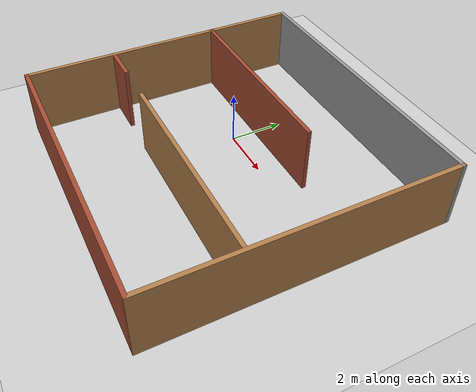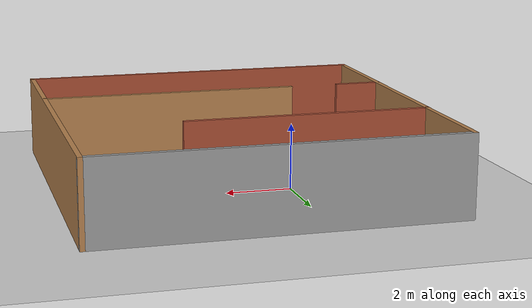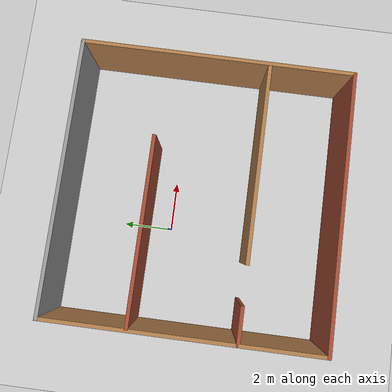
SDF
<sdf version="1.6">
 <world name="default">
  <physics type="ode">
   <gravity>0 0 -9.81</gravity>
   <ode>
    <solver><type>quick</type><iters>20</iters><sor>1.0</sor></solver>
    <constraints>
     <cfm>0.0</cfm>
     <erp>0.2</erp>
     <contact_max_correcting_vel>100.0</contact_max_correcting_vel>
     <contact_surface_layer>0.0</contact_surface_layer>
    </constraints>
   </ode>
   <real_time_update_rate>200</real_time_update_rate>
   <max_step_size>0.005</max_step_size>
  </physics>
  <scene>
   <ambient>0.8 0.8 0.8 1.0</ambient>
   <background>0.7 0.7 0.7 1.0</background>
   <shadows>true</shadows>
  </scene>
  <include><uri>model://sun</uri></include>
  <include><uri>model://ground_plane</uri></include>
  <include><uri>model://mazeTextureDoor</uri></include>
 </world>
</sdf>

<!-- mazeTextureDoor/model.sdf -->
<sdf version='1.7'>
  <model name='mazeTextureDoor'>
    <pose>1.505 -1.105 0 0 -0 0</pose>
    <link name='Wall_0'>
      <collision name='Wall_0_Collision'>
        <geometry>
          <box>
            <size>11 0.15 2.5</size>
          </box>
        </geometry>
        <pose>0 0 1.25 0 -0 0</pose>
      </collision>
      <visual name='Wall_0_Visual'>
        <pose>0 0 1.25 0 -0 0</pose>
        <geometry>
          <box>
            <size>11 0.15 2.5</size>
          </box>
        </geometry>
        <material>
          <script>
            <uri>file://media/materials/scripts/gazebo.material</uri>
            <name>Gazebo/Bricks</name>
          </script>
          <ambient>1 1 1 1</ambient>
        </material>
        <meta>
          <layer>0</layer>
        </meta>
      </visual>
      <pose>0 -5.425 0 0 -0 0</pose>
    </link>
    <link name='Wall_13'>
      <collision name='Wall_13_Collision'>
        <geometry>
          <box>
            <size>1.5 0.15 2.5</size>
          </box>
        </geometry>
        <pose>0 0 1.25 0 -0 0</pose>
      </collision>
      <visual name='Wall_13_Visual'>
        <pose>0 0 1.25 0 -0 0</pose>
        <geometry>
          <box>
            <size>1.5 0.15 2.5</size>
          </box>
        </geometry>
        <material>
          <script>
            <uri>file://media/materials/scripts/gazebo.material</uri>
            <name>Gazebo/Bricks</name>
          </script>
          <ambient>1 1 1 1</ambient>
        </material>
        <meta>
          <layer>0</layer>
        </meta>
      </visual>
      <pose>-4.75 -2.075 0 0 -0 0</pose>
    </link>
    <link name='Wall_17'>
      <collision name='Wall_17_Collision'>
        <geometry>
          <box>
            <size>8 0.15 2.5</size>
          </box>
        </geometry>
        <pose>0 0 1.25 0 -0 0</pose>
      </collision>
      <visual name='Wall_17_Visual'>
        <pose>0 0 1.25 0 -0 0</pose>
        <geometry>
          <box>
            <size>8 0.15 2.5</size>
          </box>
        </geometry>
        <material>
          <script>
            <uri>file://media/materials/scripts/gazebo.material</uri>
            <name>Gazebo/Wood</name>
          </script>
          <ambient>1 1 1 1</ambient>
        </material>
        <meta>
          <layer>0</layer>
        </meta>
      </visual>
      <pose>1.5 -2.075 0 0 -0 3.14159</pose>
    </link>
    <link name='Wall_2'>
      <collision name='Wall_2_Collision'>
        <geometry>
          <box>
            <size>11 0.15 2.5</size>
          </box>
        </geometry>
        <pose>0 0 1.25 0 -0 0</pose>
      </collision>
      <visual name='Wall_2_Visual'>
        <pose>0 0 1.25 0 -0 0</pose>
        <geometry>
          <box>
            <size>11 0.15 2.5</size>
          </box>
        </geometry>
        <material>
          <script>
            <uri>file://media/materials/scripts/gazebo.material</uri>
            <name>Gazebo/Wood</name>
          </script>
          <ambient>1 1 1 1</ambient>
        </material>
        <meta>
          <layer>0</layer>
        </meta>
      </visual>
      <pose>5.425 0 0 0 -0 1.5708</pose>
    </link>
    <link name='Wall_3'>
      <collision name='Wall_3_Collision'>
        <geometry>
          <box>
            <size>11 0.15 2.5</size>
          </box>
        </geometry>
        <pose>0 0 1.25 0 -0 0</pose>
      </collision>
      <visual name='Wall_3_Visual'>
        <pose>0 0 1.25 0 -0 0</pose>
        <geometry>
          <box>
            <size>11 0.15 2.5</size>
          </box>
        </geometry>
        <material>
          <script>
            <uri>file://media/materials/scripts/gazebo.material</uri>
            <name>Gazebo/Grey</name>
          </script>
          <ambient>1 1 1 1</ambient>
        </material>
        <meta>
          <layer>0</layer>
        </meta>
      </visual>
      <pose>0 5.425 0 0 -0 3.14159</pose>
    </link>
    <link name='Wall_4'>
      <collision name='Wall_4_Collision'>
        <geometry>
          <box>
            <size>11 0.15 2.5</size>
          </box>
        </geometry>
        <pose>0 0 1.25 0 -0 0</pose>
      </collision>
      <visual name='Wall_4_Visual'>
        <pose>0 0 1.25 0 -0 0</pose>
        <geometry>
          <box>
            <size>11 0.15 2.5</size>
          </box>
        </geometry>
        <material>
          <script>
            <uri>file://media/materials/scripts/gazebo.material</uri>
            <name>Gazebo/Wood</name>
          </script>
          <ambient>1 1 1 1</ambient>
        </material>
        <meta>
          <layer>0</layer>
        </meta>
      </visual>
      <pose>-5.425 0 0 0 -0 -1.5708</pose>
    </link>
    <link name='Wall_7'>
      <collision name='Wall_7_Collision'>
        <geometry>
          <box>
            <size>7.5 0.15 2.5</size>
          </box>
        </geometry>
        <pose>0 0 1.25 0 -0 0</pose>
      </collision>
      <visual name='Wall_7_Visual'>
        <pose>0 0 1.25 0 -0 0</pose>
        <geometry>
          <box>
            <size>7.5 0.15 2.5</size>
          </box>
        </geometry>
        <material>
          <script>
            <uri>file://media/materials/scripts/gazebo.material</uri>
            <name>Gazebo/Bricks</name>
          </script>
          <ambient>1 1 1 1</ambient>
        </material>
        <meta>
          <layer>0</layer>
        </meta>
      </visual>
      <pose>-1.75 2.075 0 0 -0 0</pose>
    </link>
    <static>1</static>
  </model>
</sdf>
